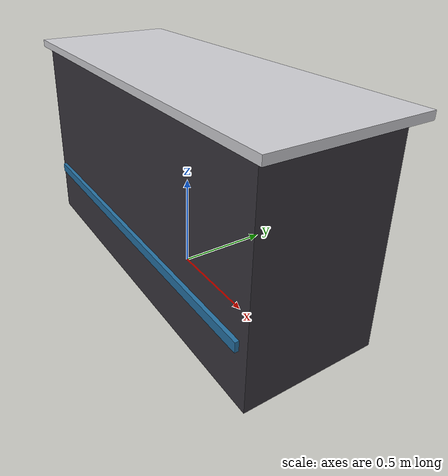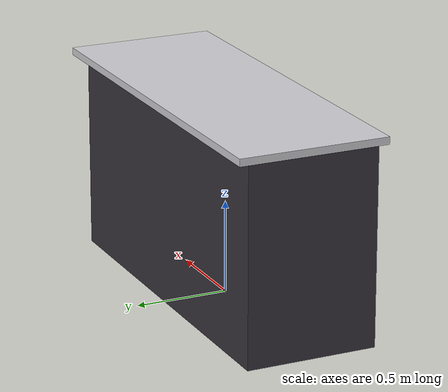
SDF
<?xml version="1.0" ?>
<!--
  reception_counter | Module B - Furniture
  2.0 (X) x 0.7 (Y) m footprint, 1.1 m tall body + overhanging top lip.
  Origin: floor centre. Solid obstacle -> single box collision (R5).
-->
<sdf version="1.6">
  <model name="reception_counter">
    <static>true</static>
    <link name="counter_link">
      <!-- R5 single collision -->
      <collision name="counter_col">
        <pose>0 0 0.55 0 0 0</pose>
        <geometry><box><size>2.0 0.7 1.1</size></box></geometry>
      </collision>
      <!-- Body: dark premium -->
      <visual name="body_vis">
        <pose>0 0 0.53 0 0 0</pose>
        <geometry><box><size>2.0 0.7 1.06</size></box></geometry>
        <material><ambient>0.15 0.14 0.16 1</ambient><diffuse>0.22 0.21 0.24 1</diffuse><specular>0.20 0.20 0.22 1</specular></material>
      </visual>
      <!-- Top lip: light stone -->
      <visual name="top_vis">
        <pose>0 0.02 1.09 0 0 0</pose>
        <geometry><box><size>2.1 0.8 0.04</size></box></geometry>
        <material><ambient>0.70 0.70 0.72 1</ambient><diffuse>0.82 0.82 0.84 1</diffuse><specular>0.45 0.45 0.47 1</specular></material>
      </visual>
      <!-- Accent strip (subtle emissive branding light) -->
      <visual name="accent_vis">
        <pose>0 -0.36 0.30 0 0 0</pose>
        <geometry><box><size>1.9 0.02 0.05</size></box></geometry>
        <material>
          <ambient>0.10 0.30 0.45 1</ambient><diffuse>0.15 0.45 0.65 1</diffuse>
          <emissive>0.10 0.35 0.55 1</emissive>
        </material>
      </visual>
    </link>
  </model>
</sdf>
